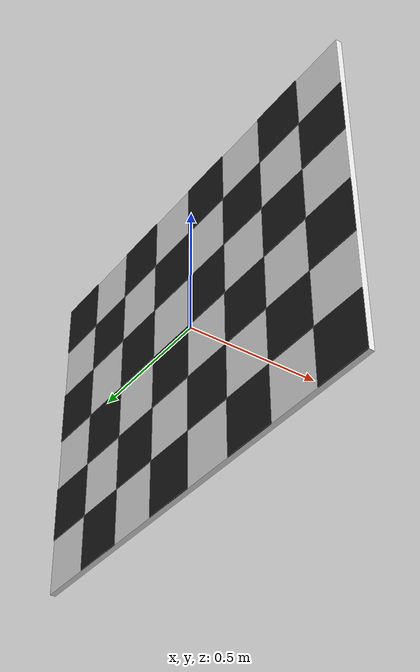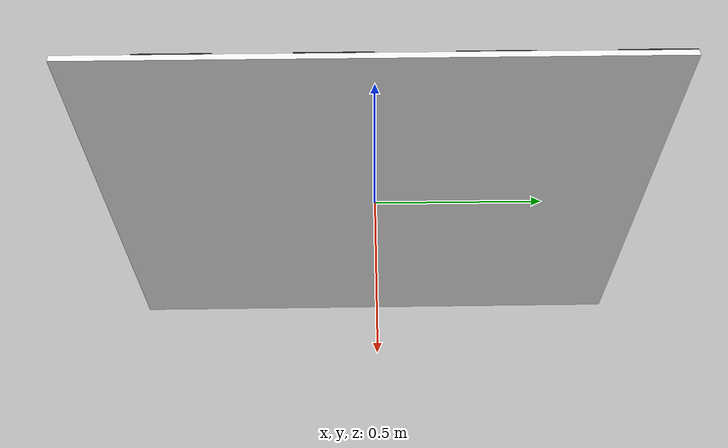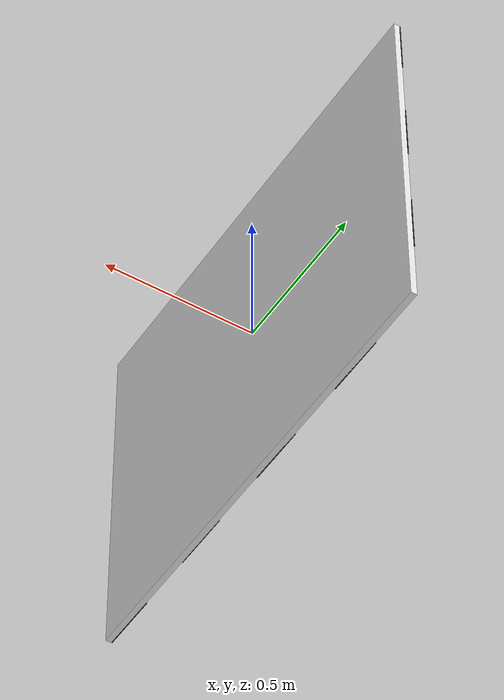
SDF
<?xml version="1.0"?>
<sdf version="1.6">
  <model name="checkerboard_8x6">
    <static>true</static>
    <link name="board">
      <visual name="board_white">
        <geometry><box><size>0.02 1.60 1.20</size></box></geometry>
        <material><script><uri>file://media/materials/scripts/gazebo.material</uri><name>Gazebo/White</name></script></material>
      </visual>
      <collision name="board_collision">
        <geometry><box><size>0.02 1.60 1.20</size></box></geometry>
      </collision>
      <visual name="b_0_0">
        <pose>-0.011 -0.7 -0.5 0 0 0</pose>
        <geometry><box><size>0.004 0.20 0.20</size></box></geometry>
        <material><script><uri>file://media/materials/scripts/gazebo.material</uri><name>Gazebo/Black</name></script></material>
      </visual>
      <visual name="b_2_0">
        <pose>-0.011 -0.3 -0.5 0 0 0</pose>
        <geometry><box><size>0.004 0.20 0.20</size></box></geometry>
        <material><script><uri>file://media/materials/scripts/gazebo.material</uri><name>Gazebo/Black</name></script></material>
      </visual>
      <visual name="b_4_0">
        <pose>-0.011 0.1 -0.5 0 0 0</pose>
        <geometry><box><size>0.004 0.20 0.20</size></box></geometry>
        <material><script><uri>file://media/materials/scripts/gazebo.material</uri><name>Gazebo/Black</name></script></material>
      </visual>
      <visual name="b_6_0">
        <pose>-0.011 0.5 -0.5 0 0 0</pose>
        <geometry><box><size>0.004 0.20 0.20</size></box></geometry>
        <material><script><uri>file://media/materials/scripts/gazebo.material</uri><name>Gazebo/Black</name></script></material>
      </visual>
      <visual name="b_1_1">
        <pose>-0.011 -0.5 -0.3 0 0 0</pose>
        <geometry><box><size>0.004 0.20 0.20</size></box></geometry>
        <material><script><uri>file://media/materials/scripts/gazebo.material</uri><name>Gazebo/Black</name></script></material>
      </visual>
      <visual name="b_3_1">
        <pose>-0.011 -0.1 -0.3 0 0 0</pose>
        <geometry><box><size>0.004 0.20 0.20</size></box></geometry>
        <material><script><uri>file://media/materials/scripts/gazebo.material</uri><name>Gazebo/Black</name></script></material>
      </visual>
      <visual name="b_5_1">
        <pose>-0.011 0.3 -0.3 0 0 0</pose>
        <geometry><box><size>0.004 0.20 0.20</size></box></geometry>
        <material><script><uri>file://media/materials/scripts/gazebo.material</uri><name>Gazebo/Black</name></script></material>
      </visual>
      <visual name="b_7_1">
        <pose>-0.011 0.7 -0.3 0 0 0</pose>
        <geometry><box><size>0.004 0.20 0.20</size></box></geometry>
        <material><script><uri>file://media/materials/scripts/gazebo.material</uri><name>Gazebo/Black</name></script></material>
      </visual>
      <visual name="b_0_2">
        <pose>-0.011 -0.7 -0.1 0 0 0</pose>
        <geometry><box><size>0.004 0.20 0.20</size></box></geometry>
        <material><script><uri>file://media/materials/scripts/gazebo.material</uri><name>Gazebo/Black</name></script></material>
      </visual>
      <visual name="b_2_2">
        <pose>-0.011 -0.3 -0.1 0 0 0</pose>
        <geometry><box><size>0.004 0.20 0.20</size></box></geometry>
        <material><script><uri>file://media/materials/scripts/gazebo.material</uri><name>Gazebo/Black</name></script></material>
      </visual>
      <visual name="b_4_2">
        <pose>-0.011 0.1 -0.1 0 0 0</pose>
        <geometry><box><size>0.004 0.20 0.20</size></box></geometry>
        <material><script><uri>file://media/materials/scripts/gazebo.material</uri><name>Gazebo/Black</name></script></material>
      </visual>
      <visual name="b_6_2">
        <pose>-0.011 0.5 -0.1 0 0 0</pose>
        <geometry><box><size>0.004 0.20 0.20</size></box></geometry>
        <material><script><uri>file://media/materials/scripts/gazebo.material</uri><name>Gazebo/Black</name></script></material>
      </visual>
      <visual name="b_1_3">
        <pose>-0.011 -0.5 0.1 0 0 0</pose>
        <geometry><box><size>0.004 0.20 0.20</size></box></geometry>
        <material><script><uri>file://media/materials/scripts/gazebo.material</uri><name>Gazebo/Black</name></script></material>
      </visual>
      <visual name="b_3_3">
        <pose>-0.011 -0.1 0.1 0 0 0</pose>
        <geometry><box><size>0.004 0.20 0.20</size></box></geometry>
        <material><script><uri>file://media/materials/scripts/gazebo.material</uri><name>Gazebo/Black</name></script></material>
      </visual>
      <visual name="b_5_3">
        <pose>-0.011 0.3 0.1 0 0 0</pose>
        <geometry><box><size>0.004 0.20 0.20</size></box></geometry>
        <material><script><uri>file://media/materials/scripts/gazebo.material</uri><name>Gazebo/Black</name></script></material>
      </visual>
      <visual name="b_7_3">
        <pose>-0.011 0.7 0.1 0 0 0</pose>
        <geometry><box><size>0.004 0.20 0.20</size></box></geometry>
        <material><script><uri>file://media/materials/scripts/gazebo.material</uri><name>Gazebo/Black</name></script></material>
      </visual>
      <visual name="b_0_4">
        <pose>-0.011 -0.7 0.3 0 0 0</pose>
        <geometry><box><size>0.004 0.20 0.20</size></box></geometry>
        <material><script><uri>file://media/materials/scripts/gazebo.material</uri><name>Gazebo/Black</name></script></material>
      </visual>
      <visual name="b_2_4">
        <pose>-0.011 -0.3 0.3 0 0 0</pose>
        <geometry><box><size>0.004 0.20 0.20</size></box></geometry>
        <material><script><uri>file://media/materials/scripts/gazebo.material</uri><name>Gazebo/Black</name></script></material>
      </visual>
      <visual name="b_4_4">
        <pose>-0.011 0.1 0.3 0 0 0</pose>
        <geometry><box><size>0.004 0.20 0.20</size></box></geometry>
        <material><script><uri>file://media/materials/scripts/gazebo.material</uri><name>Gazebo/Black</name></script></material>
      </visual>
      <visual name="b_6_4">
        <pose>-0.011 0.5 0.3 0 0 0</pose>
        <geometry><box><size>0.004 0.20 0.20</size></box></geometry>
        <material><script><uri>file://media/materials/scripts/gazebo.material</uri><name>Gazebo/Black</name></script></material>
      </visual>
      <visual name="b_1_5">
        <pose>-0.011 -0.5 0.5 0 0 0</pose>
        <geometry><box><size>0.004 0.20 0.20</size></box></geometry>
        <material><script><uri>file://media/materials/scripts/gazebo.material</uri><name>Gazebo/Black</name></script></material>
      </visual>
      <visual name="b_3_5">
        <pose>-0.011 -0.1 0.5 0 0 0</pose>
        <geometry><box><size>0.004 0.20 0.20</size></box></geometry>
        <material><script><uri>file://media/materials/scripts/gazebo.material</uri><name>Gazebo/Black</name></script></material>
      </visual>
      <visual name="b_5_5">
        <pose>-0.011 0.3 0.5 0 0 0</pose>
        <geometry><box><size>0.004 0.20 0.20</size></box></geometry>
        <material><script><uri>file://media/materials/scripts/gazebo.material</uri><name>Gazebo/Black</name></script></material>
      </visual>
      <visual name="b_7_5">
        <pose>-0.011 0.7 0.5 0 0 0</pose>
        <geometry><box><size>0.004 0.20 0.20</size></box></geometry>
        <material><script><uri>file://media/materials/scripts/gazebo.material</uri><name>Gazebo/Black</name></script></material>
      </visual>
    </link>
  </model>
</sdf>
